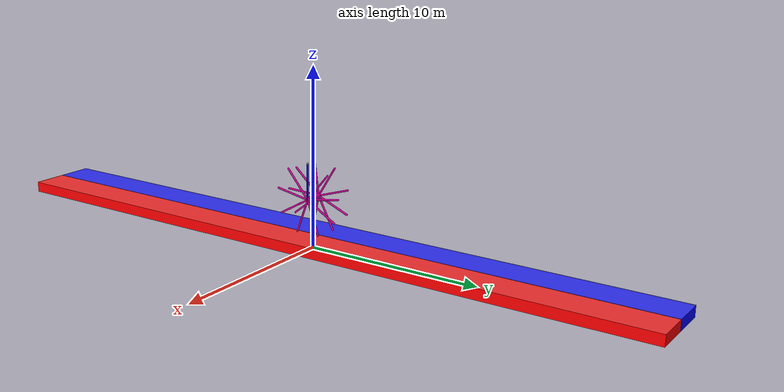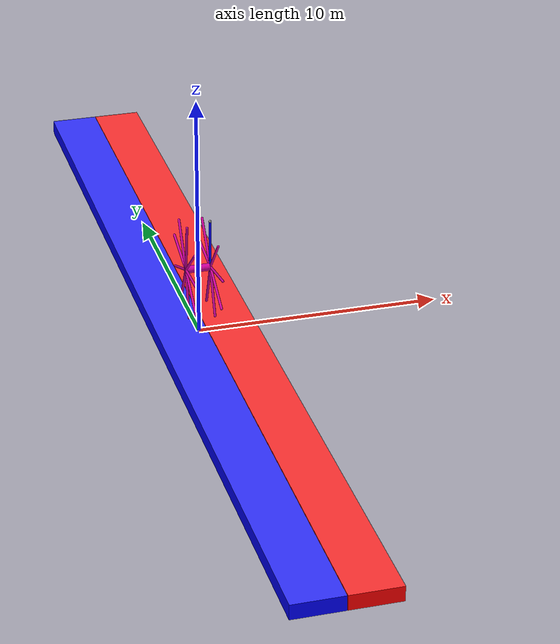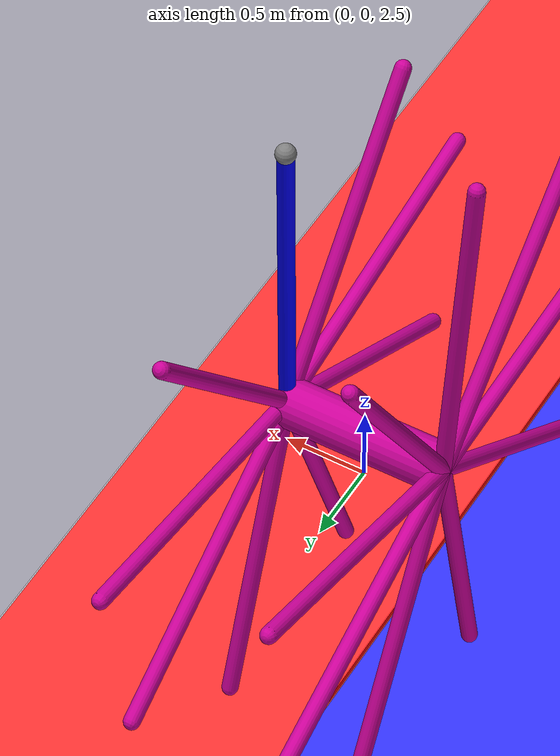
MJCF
<mujoco>
    <compiler autolimits="true"/>

    <option gravity = "0 0 -9.81" timestep="0.01" />

    <default>

        <geom density="5.0" rgba="0.8 0 0.6 1" size="0.05" friction="3 0 0"/>
        <joint armature="1" damping="0" limited="false"/>

    </default>

    <asset>

        <texture name="grid" type="2d" builtin="checker" rgb1="1 1 1" rgb2=".5 .5 .5" width="300" height="300" mark="edge" markrgb=".2 .3 .4"/>
        <material name="grid" texture="grid" texrepeat="4 4" texuniform="true"/>
        <texture type="skybox" builtin="gradient" rgb1=".3 .5 .7" rgb2="1 1 1" width="32" height="512"/>

    </asset>

    <worldbody>

        <light pos="0 0 40" dir="0 0 -1"/>

        <body pos="1.01 0 0.5" axisangle="1 0 0 0">
            <geom name="redbelt" type="box" size="1 20 0.3" rgba="1 0 0 1"  material="grid" mass="10"/>
            <joint name="redconveyor" type="slide" pos="0 -10 0" axis="0 1 0" range="-20 20"/>
            <site name="redbeltsite" type="sphere" size="0.05" pos="0 0 0"/>
            <site name="forceSiteR" type="box" pos="0 0 0.31" size="1 20 0.01" rgba="1 1 1 0.1"/>
        </body>

        <body pos="-1.01 0 0.5" axisangle="1 0 0 0">
            <geom name="bluebelt" type="box" size="1 20 0.3" rgba="0 0 1 1" material="grid" mass="10"/>
            <joint name="blueconveyor" type="slide" pos="0 -10 0" axis="0 1 0" range="-20 20"/>
            <site name="bluebeltsite" type="sphere" size="0.05" pos="0 0 0"/>
            <site name="forceSiteB" type="box" pos="0 0 0.31" size="1 20 0.01" rgba="1 1 1 0.1"/>
        </body>

        <body pos="-15 0 3" axisangle="0 1 0 -90">
            <camera name="axlecam" pos="0 0 0" axisangle="0 0 1 -90"/>
        </body>

        <body pos="0 0 2.83">

            <geom name="axlebase" type="cylinder" size="0.15 .5" axisangle="0 1 0 90" density="10"/>
            <joint name="axleZAxis" type="slide" axis="0 0 1"/>
            <joint name="axleYAxis" type="slide" axis="0 1 0"/>
            <joint type="hinge" axis="1 0 0"/>
            <site name="axlesite" type="sphere" size="0.01" pos="0 0 0"/>

            <body pos="0.5 0 0" axisangle="1 0 0 0">
                <!--joint name="axleL" type="hinge" axis="-1 0 0" pos="0 0 0"/-->
                <geom name="RL1" type="capsule" fromto="0 0 0  0 0 2" rgba="0 0 1 1"/>
                <site name="RL1site" type="sphere" size="0.06" pos="0 0 2"/>
                <body pos="0 0 0" axisangle="1 0 0 40">
                    <geom name="RL2" type="capsule" fromto="0 0 0  0 0 2"/>
                    <site name="RL2site" type="sphere" size="0.01" pos="0 0 2"/>
                </body>
                <body pos="0 0 0" axisangle="1 0 0 80">
                    <geom name="RL3" type="capsule" fromto="0 0 0  0 0 2"/>
                    <site name="RL3site" type="sphere" size="0.01" pos="0 0 2"/>
                </body>
                <body pos="0 0 0" axisangle="1 0 0 120">
                    <geom name="RL4" type="capsule" fromto="0 0 0  0 0 2"/>
                    <site name="RL4site" type="sphere" size="0.01" pos="0 0 2"/>
                </body>
                <body pos="0 0 0" axisangle="1 0 0 160">
                    <geom name="RL5" type="capsule" fromto="0 0 0  0 0 2"/>
                    <site name="RL5site" type="sphere" size="0.01" pos="0 0 2"/>
                </body>
                <body pos="0 0 0" axisangle="1 0 0 200">
                    <geom name="RL6" type="capsule" fromto="0 0 0  0 0 2"/>
                    <site name="RL6site" type="sphere" size="0.01" pos="0 0 2"/>
                </body>
                <body pos="0 0 0" axisangle="1 0 0 240">
                    <geom name="RL7" type="capsule" fromto="0 0 0  0 0 2"/>
                    <site name="RL7site" type="sphere" size="0.01" pos="0 0 2"/>
                </body>
                <body pos="0 0 0" axisangle="1 0 0 280">
                    <geom name="RL8" type="capsule" fromto="0 0 0  0 0 2"/>
                    <site name="RL8site" type="sphere" size="0.01" pos="0 0 2"/>
                </body>
                <body pos="0 0 0" axisangle="1 0 0 320">
                    <geom name="RL9" type="capsule" fromto="0 0 0  0 0 2"/>
                    <site name="RL9site" type="sphere" size="0.01" pos="0 0 2"/>
                </body>
            </body>

            <body pos="-0.5 0 0" axisangle="1 0 0 -1">
                <!--joint name="axleR" type="hinge" axis="1 0 0" pos="0 0 0"/-->
                <body pos="0 0 0" axisangle="1 0 0 9">
                    <geom name="RR1" type="capsule" fromto="0 0 0  0 0 2"/>
                    <site name="RR1site" type="sphere" size="0.01" pos="0 0 2"/>
                </body>
                <body pos="0 0 0" axisangle="1 0 0 49">
                    <geom name="RR2" type="capsule" fromto="0 0 0  0 0 2"/>
                    <site name="RR2site" type="sphere" size="0.01" pos="0 0 2"/>
                </body>
                <body pos="0 0 0" axisangle="1 0 0 89">
                    <geom name="RR3" type="capsule" fromto="0 0 0  0 0 2"/>
                    <site name="RR3site" type="sphere" size="0.01" pos="0 0 2"/>
                </body>
                <body pos="0 0 0" axisangle="1 0 0 129">
                    <geom name="RR4" type="capsule" fromto="0 0 0  0 0 2"/>
                    <site name="RR4site" type="sphere" size="0.01" pos="0 0 2"/>
                </body>
                <body pos="0 0 0" axisangle="1 0 0 169">
                    <geom name="RR5" type="capsule" fromto="0 0 0  0 0 2"/>
                    <site name="RR5site" type="sphere" size="0.01" pos="0 0 2"/>
                </body>
                <body pos="0 0 0" axisangle="1 0 0 209">
                    <geom name="RR6" type="capsule" fromto="0 0 0  0 0 2"/>
                    <site name="RR6site" type="sphere" size="0.01" pos="0 0 2"/>
                </body>
                <body pos="0 0 0" axisangle="1 0 0 249">
                    <geom name="RR7" type="capsule" fromto="0 0 0  0 0 2"/>
                    <site name="RR7site" type="sphere" size="0.01" pos="0 0 2"/>
                </body>
                <body pos="0 0 0" axisangle="1 0 0 289">
                    <geom name="RR8" type="capsule" fromto="0 0 0  0 0 2"/>
                    <site name="RR8site" type="sphere" size="0.01" pos="0 0 2"/>
                </body>
                <body pos="0 0 0" axisangle="1 0 0 329">
                    <geom name="RR9" type="capsule" fromto="0 0 0  0 0 2"/>
                    <site name="RR9site" type="sphere" size="0.01" pos="0 0 2"/>
                </body>
            </body>
        </body>

    </worldbody>

    <actuator>

        <general name="redbeltact" joint="redconveyor" biastype="affine" gainprm="1" biasprm="0"/>
        <general name="bluebeltact" joint="blueconveyor" biastype="affine" gainprm="1" biasprm="0"/>

    </actuator>

    <sensor>
        <force site="forceSiteR"/>
        <force site="forceSiteB"/>
        <velocimeter name="axle_velocimeter" site="axlesite"/>
    </sensor>

</mujoco>
